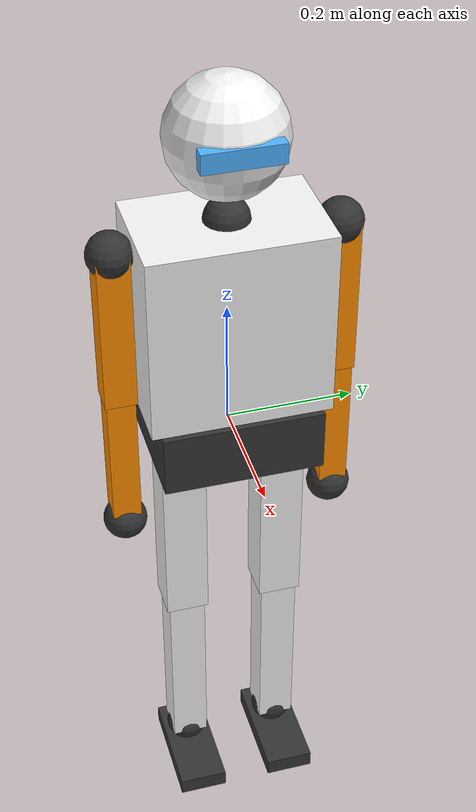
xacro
<?xml version="1.0"?>
<!-- A simple humanoid: 21 revolute joints (waist, neck pan/tilt, 3 per arm, 6 per leg), using arm and leg macros -->
<robot name="humanoid" xmlns:xacro="http://www.ros.org/wiki/xacro">
  <xacro:include filename="../../common/urdf/macros.xacro"/>
  <xacro:macro name="rev" params="name parent child xyz axis lo hi rpy:='0 0 0'">
    <joint name="${name}" type="revolute">
      <parent link="${parent}"/><child link="${child}"/><origin xyz="${xyz}" rpy="${rpy}"/><axis xyz="${axis}"/>
      <limit lower="${lo}" upper="${hi}" effort="30" velocity="3"/>
    </joint>
  </xacro:macro>
  <xacro:macro name="blob" params="name m">
    <link name="${name}">
      <visual><geometry><sphere radius="0.035"/></geometry><material name="dark_grey"/></visual>
      <collision><geometry><sphere radius="0.035"/></geometry></collision>
      <xacro:sphere_inertia m="${m}" r="0.035"/>
    </link>
  </xacro:macro>
  <link name="pelvis">
    <visual><geometry><box size="0.20 0.25 0.10"/></geometry><material name="dark_grey"/></visual>
    <collision><geometry><box size="0.20 0.25 0.10"/></geometry></collision>
    <xacro:box_inertia m="5.0" x="0.20" y="0.25" z="0.10"/>
  </link>
  <xacro:rev name="waist_joint" parent="pelvis" child="torso" xyz="0 0 0.05" axis="0 0 1" lo="-1.0" hi="1.0"/>
  <link name="torso">
    <visual><origin xyz="0 0 0.15"/><geometry><box size="0.18 0.28 0.30"/></geometry><material name="white"/></visual>
    <collision><origin xyz="0 0 0.15"/><geometry><box size="0.18 0.28 0.30"/></geometry></collision>
    <xacro:box_inertia m="8.0" x="0.18" y="0.28" z="0.30" xyz="0 0 0.15"/>
  </link>
  <xacro:rev name="neck_pan_joint" parent="torso" child="neck" xyz="0 0 0.30" axis="0 0 1" lo="-1.2" hi="1.2"/>
  <xacro:blob name="neck" m="0.2"/>
  <xacro:rev name="head_tilt_joint" parent="neck" child="head" xyz="0 0 0.04" axis="0 1 0" lo="-0.5" hi="0.6"/>
  <link name="head">
    <visual><origin xyz="0 0 0.09"/><geometry><sphere radius="0.09"/></geometry><material name="white"/></visual>
    <visual><origin xyz="0.08 0 0.10"/><geometry><box size="0.02 0.12 0.03"/></geometry><material name="sky_blue"/></visual>
    <collision><origin xyz="0 0 0.09"/><geometry><sphere radius="0.09"/></geometry></collision>
    <xacro:sphere_inertia m="1.5" r="0.09" xyz="0 0 0.09"/>
  </link>
  <xacro:macro name="arm" params="side s roll_lo roll_hi">
    <xacro:rev name="${side}_shoulder_pitch_joint" parent="torso" child="${side}_shoulder" xyz="0 ${s*0.17} 0.27" axis="0 1 0" lo="-3.0" hi="3.0"/>
    <xacro:blob name="${side}_shoulder" m="0.3"/>
    <xacro:rev name="${side}_shoulder_roll_joint" parent="${side}_shoulder" child="${side}_upper_arm" xyz="0 0 0" axis="1 0 0" lo="${roll_lo}" hi="${roll_hi}"/>
    <link name="${side}_upper_arm">
      <visual><origin xyz="0 0 -0.125"/><geometry><box size="0.05 0.05 0.25"/></geometry><material name="orange"/></visual>
      <collision><origin xyz="0 0 -0.125"/><geometry><box size="0.05 0.05 0.25"/></geometry></collision>
      <xacro:box_inertia m="1.0" x="0.05" y="0.05" z="0.25" xyz="0 0 -0.125"/>
    </link>
    <xacro:rev name="${side}_elbow_joint" parent="${side}_upper_arm" child="${side}_forearm" xyz="0 0 -0.25" axis="0 1 0" lo="-2.3" hi="0"/>
    <link name="${side}_forearm">
      <visual><origin xyz="0 0 -0.11"/><geometry><box size="0.045 0.045 0.22"/></geometry><material name="orange"/></visual>
      <visual><origin xyz="0 0 -0.24"/><geometry><sphere radius="0.035"/></geometry><material name="dark_grey"/></visual>
      <collision><origin xyz="0 0 -0.11"/><geometry><box size="0.045 0.045 0.22"/></geometry></collision>
      <collision><origin xyz="0 0 -0.24"/><geometry><sphere radius="0.035"/></geometry></collision>
      <xacro:box_inertia m="0.7" x="0.045" y="0.045" z="0.22" xyz="0 0 -0.11"/>
    </link>
  </xacro:macro>
  <xacro:arm side="left" s="1" roll_lo="-1.5" roll_hi="0.2"/>
  <xacro:arm side="right" s="-1" roll_lo="-0.2" roll_hi="1.5"/>
  <xacro:macro name="leg" params="side s">
    <xacro:rev name="${side}_hip_yaw_joint" parent="pelvis" child="${side}_hip1" xyz="0 ${s*0.08} -0.05" axis="0 0 1" lo="-0.6" hi="0.6"/>
    <xacro:blob name="${side}_hip1" m="0.3"/>
    <xacro:rev name="${side}_hip_roll_joint" parent="${side}_hip1" child="${side}_hip2" xyz="0 0 0" axis="1 0 0" lo="-0.5" hi="0.5"/>
    <xacro:blob name="${side}_hip2" m="0.3"/>
    <xacro:rev name="${side}_hip_pitch_joint" parent="${side}_hip2" child="${side}_thigh" xyz="0 0 0" axis="0 1 0" lo="-1.8" hi="0.8"/>
    <link name="${side}_thigh">
      <visual><origin xyz="0 0 -0.16"/><geometry><box size="0.07 0.07 0.32"/></geometry><material name="white"/></visual>
      <collision><origin xyz="0 0 -0.16"/><geometry><box size="0.07 0.07 0.32"/></geometry></collision>
      <xacro:box_inertia m="2.5" x="0.07" y="0.07" z="0.32" xyz="0 0 -0.16"/>
    </link>
    <xacro:rev name="${side}_knee_joint" parent="${side}_thigh" child="${side}_shin" xyz="0 0 -0.32" axis="0 1 0" lo="0" hi="2.2"/>
    <link name="${side}_shin">
      <visual><origin xyz="0 0 -0.16"/><geometry><box size="0.06 0.06 0.32"/></geometry><material name="white"/></visual>
      <collision><origin xyz="0 0 -0.16"/><geometry><box size="0.06 0.06 0.32"/></geometry></collision>
      <xacro:box_inertia m="1.8" x="0.06" y="0.06" z="0.32" xyz="0 0 -0.16"/>
    </link>
    <xacro:rev name="${side}_ankle_pitch_joint" parent="${side}_shin" child="${side}_ankle" xyz="0 0 -0.32" axis="0 1 0" lo="-0.8" hi="0.8"/>
    <xacro:blob name="${side}_ankle" m="0.2"/>
    <xacro:rev name="${side}_ankle_roll_joint" parent="${side}_ankle" child="${side}_foot" xyz="0 0 0" axis="1 0 0" lo="-0.4" hi="0.4"/>
    <link name="${side}_foot">
      <visual><origin xyz="0.03 0 -0.04"/><geometry><box size="0.18 0.08 0.03"/></geometry><material name="dark_grey"/></visual>
      <collision><origin xyz="0.03 0 -0.04"/><geometry><box size="0.18 0.08 0.03"/></geometry></collision>
      <xacro:box_inertia m="0.5" x="0.18" y="0.08" z="0.03" xyz="0.03 0 -0.04"/>
    </link>
  </xacro:macro>
  <xacro:leg side="left" s="1"/>
  <xacro:leg side="right" s="-1"/>
</robot>

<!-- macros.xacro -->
<!-- Shared materials and inertia macros (solid box, cylinder along Z, sphere) -->
<robot xmlns:xacro="http://www.ros.org/wiki/xacro">
  <material name="orange"><color rgba="1.0 0.55 0.0 1.0"/></material>
  <material name="dark_grey"><color rgba="0.2 0.2 0.2 1.0"/></material>
  <material name="light_grey"><color rgba="0.75 0.75 0.78 1.0"/></material>
  <material name="sky_blue"><color rgba="0.3 0.7 1.0 1.0"/></material>
  <material name="green"><color rgba="0.2 0.75 0.35 1.0"/></material>
  <material name="red"><color rgba="0.9 0.2 0.2 1.0"/></material>
  <material name="white"><color rgba="0.95 0.95 0.95 1.0"/></material>
  <material name="prop_blue"><color rgba="0.3 0.6 1.0 0.6"/></material>

  <xacro:macro name="box_inertia" params="m x y z xyz:='0 0 0' rpy:='0 0 0'">
    <inertial>
      <origin xyz="${xyz}" rpy="${rpy}"/>
      <mass value="${m}"/>
      <inertia ixx="${m*(y*y+z*z)/12}" ixy="0" ixz="0" iyy="${m*(x*x+z*z)/12}" iyz="0" izz="${m*(x*x+y*y)/12}"/>
    </inertial>
  </xacro:macro>
  <xacro:macro name="cylinder_inertia" params="m r h xyz:='0 0 0' rpy:='0 0 0'">
    <inertial>
      <origin xyz="${xyz}" rpy="${rpy}"/>
      <mass value="${m}"/>
      <inertia ixx="${m*(3*r*r+h*h)/12}" ixy="0" ixz="0" iyy="${m*(3*r*r+h*h)/12}" iyz="0" izz="${m*r*r/2}"/>
    </inertial>
  </xacro:macro>
  <xacro:macro name="sphere_inertia" params="m r xyz:='0 0 0'">
    <inertial>
      <origin xyz="${xyz}"/>
      <mass value="${m}"/>
      <inertia ixx="${2*m*r*r/5}" ixy="0" ixz="0" iyy="${2*m*r*r/5}" iyz="0" izz="${2*m*r*r/5}"/>
    </inertial>
  </xacro:macro>
</robot>
